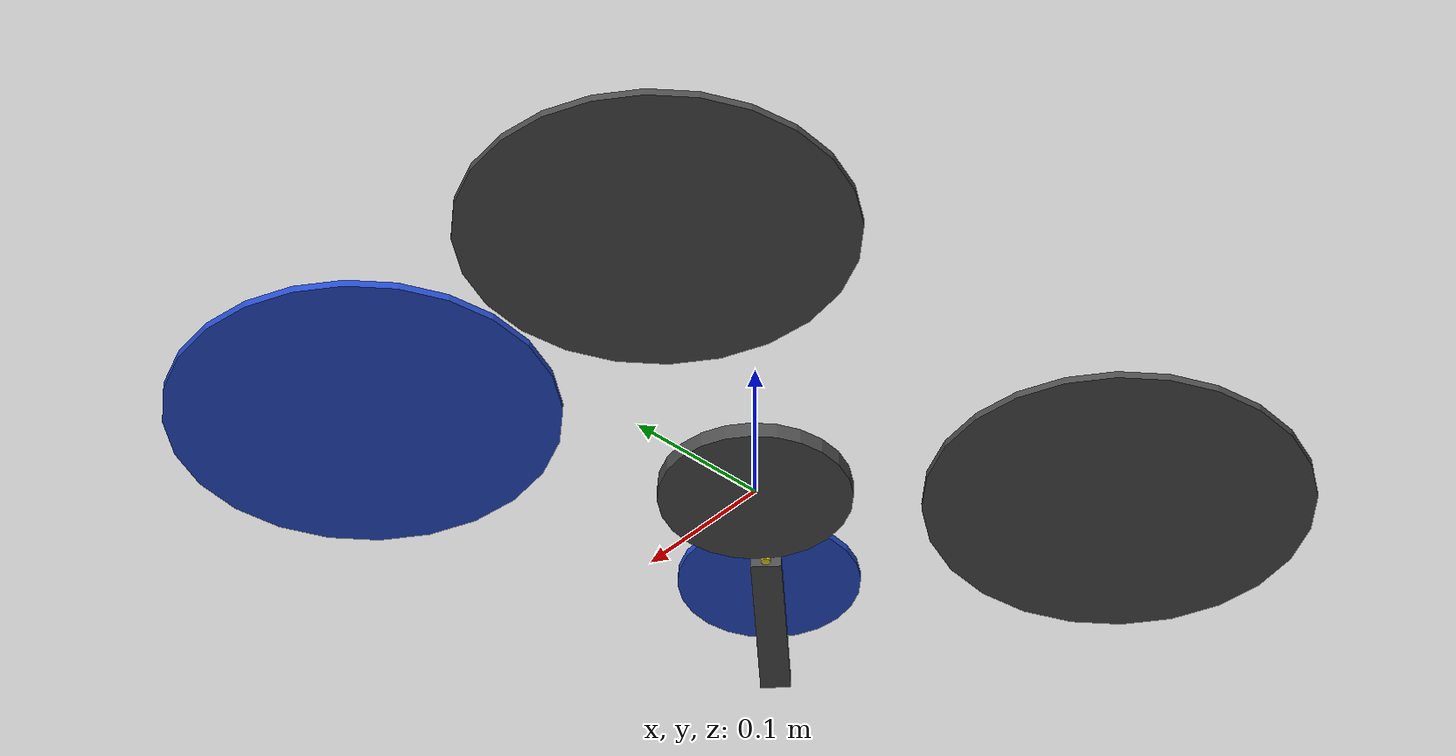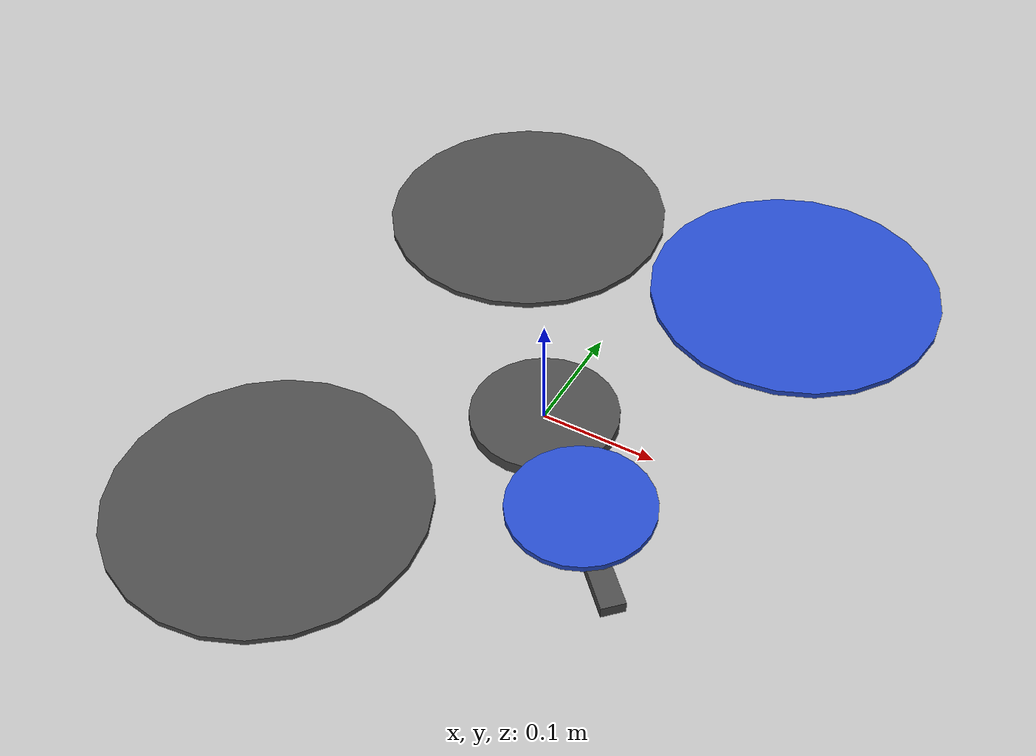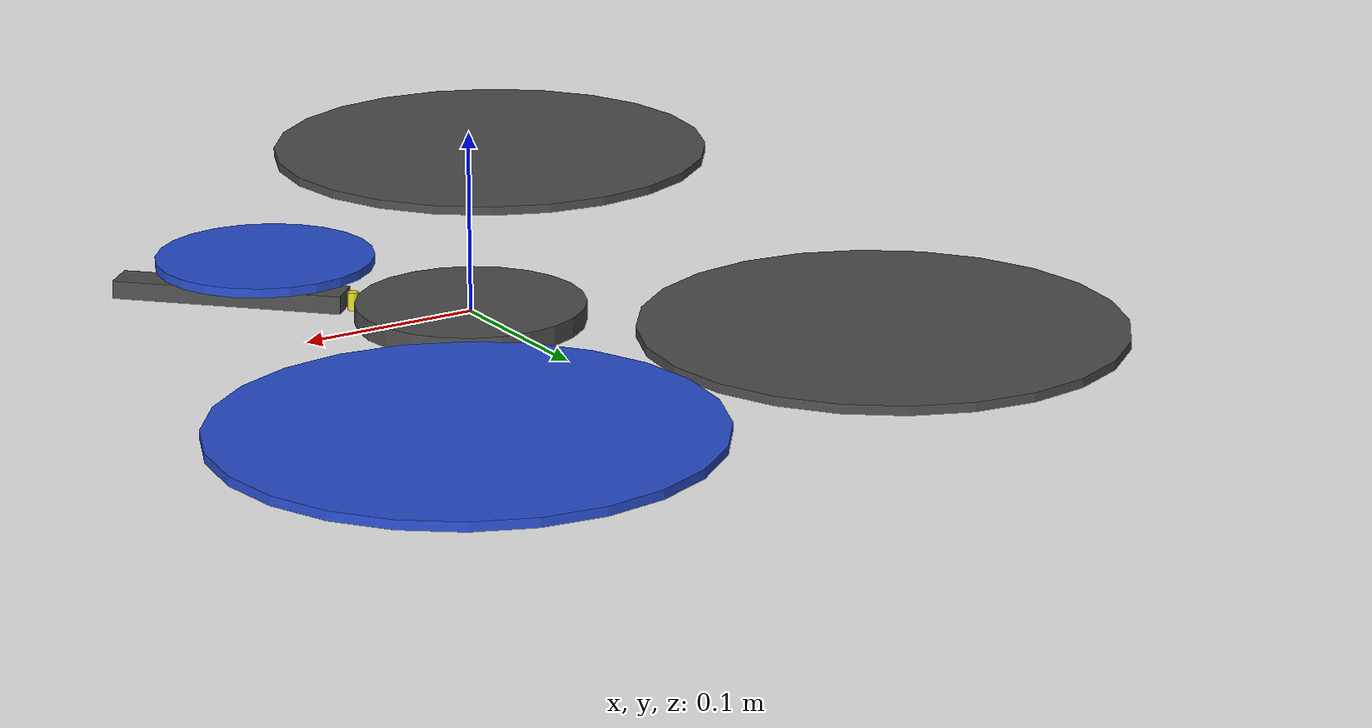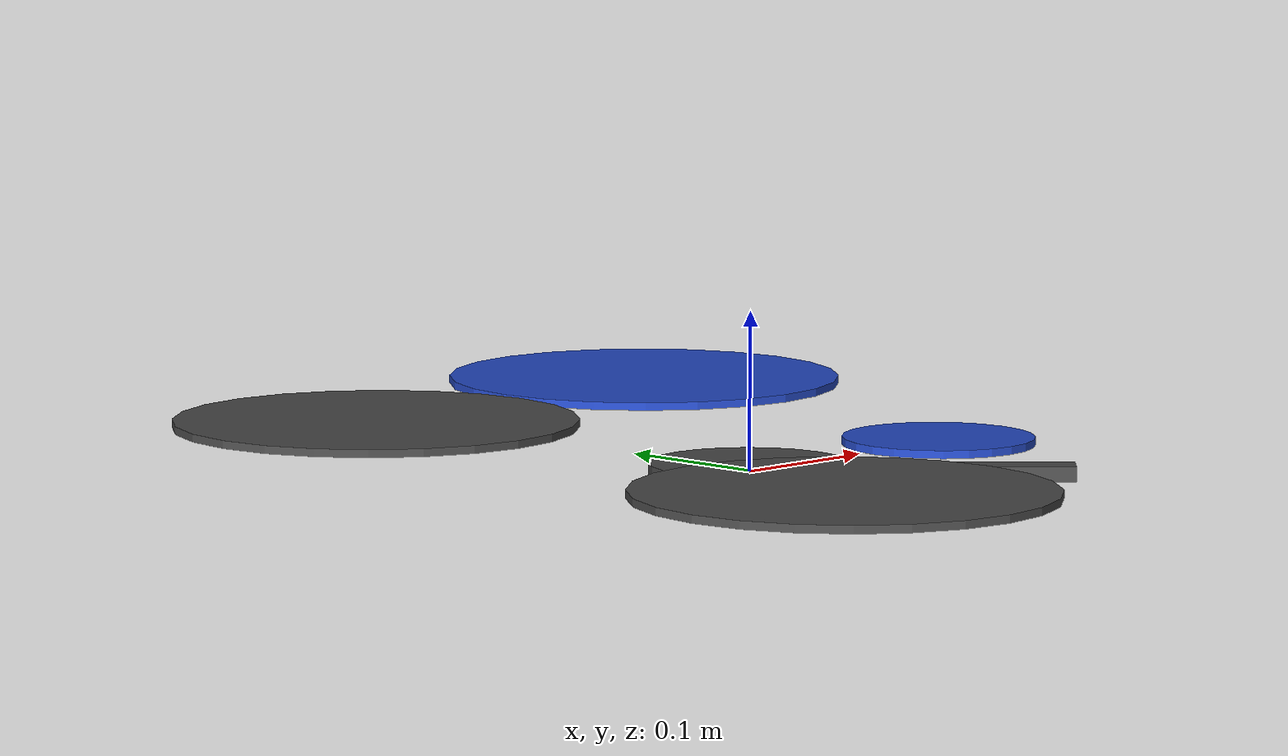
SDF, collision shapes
<!-- Generated from iris.sdf.jinja for use with HITL -->
<sdf version='1.6'>
  <model name='iris'>
    <link name='base_link'>
      <pose>0 0 0 0 0 0</pose>
      <inertial>
        <pose>0 0 0 0 0 0</pose>
        <mass>1.5</mass>
        <inertia>
          <ixx>0.029125</ixx>
          <ixy>0</ixy>
          <ixz>0</ixz>
          <iyy>0.029125</iyy>
          <iyz>0</iyz>
          <izz>0.055225</izz>
        </inertia>
      </inertial>
      <collision name='base_link_inertia_collision'>
        <pose>0 0 0 0 0 0</pose>
        <geometry>
          <cylinder>
            <length>0.011</length>
            <radius>0.063</radius>
          </cylinder>
        </geometry>
        <surface>
          <contact>
            <ode>
              <min_depth>0.001</min_depth>
              <max_vel>0</max_vel>
            </ode>
          </contact>
          <friction>
            <ode/>
          </friction>
        </surface>
      </collision>
      <visual name='base_link_inertia_visual'>
        <pose>0 0 0 0 0 0</pose>
        <geometry>
          <mesh>
            <scale>1 1 1</scale>
               <uri>model://wabble_hitl/meshes/main.dae</uri>
          </mesh>
        </geometry>
        <material>
          <script>
            <name>Gazebo/DarkGrey</name>
            <uri>file://media/materials/scripts/gazebo.material</uri>
          </script>
        </material>
      </visual>
      <gravity>1</gravity>
      <velocity_decay/>
    </link>

    <link name='/imu_link'>
      <pose>0 0 0 0 0 0</pose>
      <inertial>
        <pose>0 0 0 0 0 0</pose>
        <mass>0.015</mass>
        <inertia>
          <ixx>1e-05</ixx>
          <ixy>0</ixy>
          <ixz>0</ixz>
          <iyy>1e-05</iyy>
          <iyz>0</iyz>
          <izz>1e-05</izz>
        </inertia>
      </inertial>
    </link>
    <joint name='/imu_joint' type='revolute'>
      <child>/imu_link</child>
      <parent>base_link</parent>
      <axis>
        <xyz>1 0 0</xyz>
        <limit>
          <lower>0</lower>
          <upper>0</upper>
          <effort>0</effort>
          <velocity>0</velocity>
        </limit>
        <dynamics>
          <spring_reference>0</spring_reference>
          <spring_stiffness>0</spring_stiffness>
        </dynamics>
        <use_parent_model_frame>1</use_parent_model_frame>
      </axis>
    </joint>

    <!-- =========================== rubber_0 ============ -->
   <link name='rubber_0'>
      <pose relative_to="base_link">0.045 -0.05 0 0 0 0</pose>
      <inertial>
        <pose>0 0 0 0 0 0</pose>
        <mass>0.00001</mass>
        <inertia>
          <ixx>9.75e-07</ixx>
          <ixy>0</ixy>
          <ixz>0</ixz>
          <iyy>0.000273104</iyy>
          <iyz>0</iyz>
          <izz>0.000274004</izz>
        </inertia>
      </inertial>
      <collision name='rubber_0_collision'>
        <pose>0 0 0 0 0 0</pose>
        <geometry>
          <cylinder>
            <length>0.01</length>
            <radius>0.003</radius>
          </cylinder>
        </geometry>
        <surface>
          <contact>
            <ode/>
          </contact>
          <friction>
            <ode/>
          </friction>
        </surface>
      </collision>
      <visual name='rubber_0_visual'>
        <pose>0 0 0 0 0 0</pose>
        <geometry>
         <cylinder>
            <length>0.01</length>
            <radius>0.003</radius>
          </cylinder>
        </geometry>
        <material>
          <script>
            <name>Gazebo/Yellow</name>
            <uri>file://media/materials/scripts/gazebo.material</uri>
          </script>
        </material>
      </visual>
      <gravity>1</gravity>
      <velocity_decay/>
    </link>
    <joint name='rubber_0_joint' type='revolute'>
      <child>rubber_0</child>
      <parent>base_link</parent>
      <axis>
        <xyz>0 0 1</xyz>
        <limit>
          <lower>-1e+16</lower>
          <upper>1e+16</upper>
        </limit>
        <dynamics>
          <spring_reference>0.5</spring_reference>
          <spring_stiffness>0.5</spring_stiffness>
        </dynamics>
        <use_parent_model_frame>1</use_parent_model_frame>
      </axis>
    </joint>
    <!-- joint torsional spring plugin -->
    <plugin name="front_right_torsional_spring" filename="libgazebo_joint_torsional_spring.so">
      <kx>0.5</kx>
      <set_point>0.0</set_point>
      <joint>rubber_0_joint</joint>
    </plugin>

     <!-- =========================== arm_0 ============ -->
    <link name='arm_0'>
      <pose relative_to="rubber_0">0.035 -0.035 0 0 0 -2.36</pose>
      <inertial>
        <pose>0 0 0 0 0 0</pose>
        <mass>1.5</mass>
        <inertia>
          <ixx>0.029125</ixx>
          <ixy>0</ixy>
          <ixz>0</ixz>
          <iyy>0.029125</iyy>
          <iyz>0</iyz>
          <izz>0.055225</izz>
        </inertia>
      </inertial>
      <collision name='arm_0_inertia_collision'>
        <pose>0 0.02 0 0 0 0</pose>
        <geometry>
          <box>
            <size>0.02 0.13 0.01</size>
          </box>
        </geometry>
        <surface>
          <contact>
            <ode>
              <min_depth>0.001</min_depth>
              <max_vel>0</max_vel>
            </ode>
          </contact>
          <friction>
            <ode/>
          </friction>
        </surface>
      </collision>
      <visual name='arm_0_inertia_visual'>
        <pose>0 0 0 0 0 0</pose>
        <geometry>
          <mesh>
            <scale>1 1 1</scale>
            <uri>model://wabble_hitl/meshes/arm.dae</uri>
          </mesh>
        </geometry>
        <material>
          <script>
            <name>Gazebo/DarkGrey</name>
            <uri>file://media/materials/scripts/gazebo.material</uri>
          </script>
        </material>
      </visual>
      <gravity>1</gravity>
      <velocity_decay/>
    </link>
    <joint name='arm_0_joint' type='fixed'>
      <child>arm_0</child>
      <parent>rubber_0</parent>
    </joint>

     <!-- =========================== rotor_0 ============ -->
    <link name='rotor_0'>
      <pose relative_to="arm_0">0 0 0.02 0 0 0</pose>
      <inertial>
        <pose>0 0 0 0 0 0</pose>
        <mass>0.005</mass>
        <inertia>
          <ixx>9.75e-07</ixx>
          <ixy>0</ixy>
          <ixz>0</ixz>
          <iyy>0.000273104</iyy>
          <iyz>0</iyz>
          <izz>0.000274004</izz>
        </inertia>
      </inertial>
      <collision name='rotor_0_collision'>
        <pose>0 0 0 0 0 0</pose>
        <geometry>
          <cylinder>
            <length>0.005</length>
            <radius>0.06</radius>
          </cylinder>
        </geometry>
        <surface>
          <contact>
            <ode/>
          </contact>
          <friction>
            <ode/>
          </friction>
        </surface>
      </collision>
      <visual name='rotor_0_visual'>
        <pose>0 0 0 0 0 0</pose>
        <geometry>
          <mesh>
            <scale>1 1 1</scale>
            <uri>model://wabble_hitl/meshes/wabble_prop_ccw.dae</uri>
          </mesh>
        </geometry>
        <material>
          <script>
            <name>Gazebo/Blue</name>
            <uri>file://media/materials/scripts/gazebo.material</uri>
          </script>
        </material>
      </visual>
      <gravity>1</gravity>
      <velocity_decay/>
    </link>
    <joint name='rotor_0_joint' type='revolute'>
      <child>rotor_0</child>
      <parent>arm_0</parent>
      <axis>
        <xyz>0 0 1</xyz>
        <limit>
          <lower>-1e+16</lower>
          <upper>1e+16</upper>
        </limit>
        <dynamics>
          <spring_reference>0</spring_reference>
          <spring_stiffness>0</spring_stiffness>
        </dynamics>
        <use_parent_model_frame>1</use_parent_model_frame>
      </axis>
    </joint>

    <link name='rotor_1'>
      <pose>-0.13 0.2 0.023 0 0 0</pose>
      <inertial>
        <pose>0 0 0 0 0 0</pose>
        <mass>0.005</mass>
        <inertia>
          <ixx>9.75e-07</ixx>
          <ixy>0</ixy>
          <ixz>0</ixz>
          <iyy>0.000273104</iyy>
          <iyz>0</iyz>
          <izz>0.000274004</izz>
        </inertia>
      </inertial>
      <collision name='rotor_1_collision'>
        <pose>0 0 0 0 0 0</pose>
        <geometry>
          <cylinder>
            <length>0.005</length>
            <radius>0.128</radius>
          </cylinder>
        </geometry>
        <surface>
          <contact>
            <ode/>
          </contact>
          <friction>
            <ode/>
          </friction>
        </surface>
      </collision>
      <visual name='rotor_1_visual'>
        <pose>0 0 0 0 0 0</pose>
        <geometry>
          <mesh>
            <scale>1 1 1</scale>
            <uri>model://iris/meshes/iris_prop_ccw.dae</uri>
          </mesh>
        </geometry>
        <material>
          <script>
            <name>Gazebo/DarkGrey</name>
            <uri>file://media/materials/scripts/gazebo.material</uri>
          </script>
        </material>
      </visual>
      <gravity>1</gravity>
      <velocity_decay/>
    </link>
    <joint name='rotor_1_joint' type='revolute'>
      <child>rotor_1</child>
      <parent>base_link</parent>
      <axis>
        <xyz>0 0 1</xyz>
        <limit>
          <lower>-1e+16</lower>
          <upper>1e+16</upper>
        </limit>
        <dynamics>
          <spring_reference>0</spring_reference>
          <spring_stiffness>0</spring_stiffness>
        </dynamics>
        <use_parent_model_frame>1</use_parent_model_frame>
      </axis>
    </joint>
    <link name='rotor_2'>
      <pose>0.13 0.22 0.023 0 0 0</pose>
      <inertial>
        <pose>0 0 0 0 0 0</pose>
        <mass>0.005</mass>
        <inertia>
          <ixx>9.75e-07</ixx>
          <ixy>0</ixy>
          <ixz>0</ixz>
          <iyy>0.000273104</iyy>
          <iyz>0</iyz>
          <izz>0.000274004</izz>
        </inertia>
      </inertial>
      <collision name='rotor_2_collision'>
        <pose>0 0 0 0 0 0</pose>
        <geometry>
          <cylinder>
            <length>0.005</length>
            <radius>0.128</radius>
          </cylinder>
        </geometry>
        <surface>
          <contact>
            <ode/>
          </contact>
          <friction>
            <ode/>
          </friction>
        </surface>
      </collision>
      <visual name='rotor_2_visual'>
        <pose>0 0 0 0 0 0</pose>
        <geometry>
          <mesh>
            <scale>1 1 1</scale>
            <uri>model://iris/meshes/iris_prop_cw.dae</uri>
          </mesh>
        </geometry>
        <material>
          <script>
            <name>Gazebo/Blue</name>
            <uri>file://media/materials/scripts/gazebo.material</uri>
          </script>
        </material>
      </visual>
      <gravity>1</gravity>
      <velocity_decay/>
    </link>
    <joint name='rotor_2_joint' type='revolute'>
      <child>rotor_2</child>
      <parent>base_link</parent>
      <axis>
        <xyz>0 0 1</xyz>
        <limit>
          <lower>-1e+16</lower>
          <upper>1e+16</upper>
        </limit>
        <dynamics>
          <spring_reference>0</spring_reference>
          <spring_stiffness>0</spring_stiffness>
        </dynamics>
        <use_parent_model_frame>1</use_parent_model_frame>
      </axis>
    </joint>
    <link name='rotor_3'>
      <pose>-0.13 -0.2 0.023 0 0 0</pose>
      <inertial>
        <pose>0 0 0 0 0 0</pose>
        <mass>0.005</mass>
        <inertia>
          <ixx>9.75e-07</ixx>
          <ixy>0</ixy>
          <ixz>0</ixz>
          <iyy>0.000273104</iyy>
          <iyz>0</iyz>
          <izz>0.000274004</izz>
        </inertia>
      </inertial>
      <collision name='rotor_3_collision'>
        <pose>0 0 0 0 0 0</pose>
        <geometry>
          <cylinder>
            <length>0.005</length>
            <radius>0.128</radius>
          </cylinder>
        </geometry>
        <surface>
          <contact>
            <ode/>
          </contact>
          <friction>
            <ode/>
          </friction>
        </surface>
      </collision>
      <visual name='rotor_3_visual'>
        <pose>0 0 0 0 0 0</pose>
        <geometry>
          <mesh>
            <scale>1 1 1</scale>
            <uri>model://iris/meshes/iris_prop_cw.dae</uri>
          </mesh>
        </geometry>
        <material>
          <script>
            <name>Gazebo/DarkGrey</name>
            <uri>file://media/materials/scripts/gazebo.material</uri>
          </script>
        </material>
      </visual>
      <gravity>1</gravity>
      <velocity_decay/>
    </link>
    <joint name='rotor_3_joint' type='revolute'>
      <child>rotor_3</child>
      <parent>base_link</parent>
      <axis>
        <xyz>0 0 1</xyz>
        <limit>
          <lower>-1e+16</lower>
          <upper>1e+16</upper>
        </limit>
        <dynamics>
          <spring_reference>0</spring_reference>
          <spring_stiffness>0</spring_stiffness>
        </dynamics>
        <use_parent_model_frame>1</use_parent_model_frame>
      </axis>
    </joint>
    <plugin name='rosbag' filename='libgazebo_multirotor_base_plugin.so'>
      <robotNamespace/>
      <linkName>base_link</linkName>
      <rotorVelocitySlowdownSim>10</rotorVelocitySlowdownSim>
    </plugin>
    <plugin name='front_right_motor_model' filename='libgazebo_motor_model.so'>
      <robotNamespace/>
      <jointName>rotor_0_joint</jointName>
      <linkName>rotor_0</linkName>
      <turningDirection>ccw</turningDirection>
      <timeConstantUp>0.0125</timeConstantUp>
      <timeConstantDown>0.025</timeConstantDown>
      <maxRotVelocity>1100</maxRotVelocity>
      <motorConstant>5.84e-06</motorConstant>
      <momentConstant>0.06</momentConstant>
      <commandSubTopic>/gazebo/command/motor_speed</commandSubTopic>
      <motorNumber>0</motorNumber>
      <rotorDragCoefficient>0.000175</rotorDragCoefficient>
      <rollingMomentCoefficient>1e-06</rollingMomentCoefficient>
      <motorSpeedPubTopic>/motor_speed/0</motorSpeedPubTopic>
      <rotorVelocitySlowdownSim>10</rotorVelocitySlowdownSim>
    </plugin>
    <plugin name='back_left_motor_model' filename='libgazebo_motor_model.so'>
      <robotNamespace/>
      <jointName>rotor_1_joint</jointName>
      <linkName>rotor_1</linkName>
      <turningDirection>ccw</turningDirection>
      <timeConstantUp>0.0125</timeConstantUp>
      <timeConstantDown>0.025</timeConstantDown>
      <maxRotVelocity>1100</maxRotVelocity>
      <motorConstant>5.84e-06</motorConstant>
      <momentConstant>0.06</momentConstant>
      <commandSubTopic>/gazebo/command/motor_speed</commandSubTopic>
      <motorNumber>1</motorNumber>
      <rotorDragCoefficient>0.000175</rotorDragCoefficient>
      <rollingMomentCoefficient>1e-06</rollingMomentCoefficient>
      <motorSpeedPubTopic>/motor_speed/1</motorSpeedPubTopic>
      <rotorVelocitySlowdownSim>10</rotorVelocitySlowdownSim>
    </plugin>
    <plugin name='front_left_motor_model' filename='libgazebo_motor_model.so'>
      <robotNamespace/>
      <jointName>rotor_2_joint</jointName>
      <linkName>rotor_2</linkName>
      <turningDirection>cw</turningDirection>
      <timeConstantUp>0.0125</timeConstantUp>
      <timeConstantDown>0.025</timeConstantDown>
      <maxRotVelocity>1100</maxRotVelocity>
      <motorConstant>5.84e-06</motorConstant>
      <momentConstant>0.06</momentConstant>
      <commandSubTopic>/gazebo/command/motor_speed</commandSubTopic>
      <motorNumber>2</motorNumber>
      <rotorDragCoefficient>0.000175</rotorDragCoefficient>
      <rollingMomentCoefficient>1e-06</rollingMomentCoefficient>
      <motorSpeedPubTopic>/motor_speed/2</motorSpeedPubTopic>
      <rotorVelocitySlowdownSim>10</rotorVelocitySlowdownSim>
    </plugin>
    <plugin name='back_right_motor_model' filename='libgazebo_motor_model.so'>
      <robotNamespace/>
      <jointName>rotor_3_joint</jointName>
      <linkName>rotor_3</linkName>
      <turningDirection>cw</turningDirection>
      <timeConstantUp>0.0125</timeConstantUp>
      <timeConstantDown>0.025</timeConstantDown>
      <maxRotVelocity>1100</maxRotVelocity>
      <motorConstant>5.84e-06</motorConstant>
      <momentConstant>0.06</momentConstant>
      <commandSubTopic>/gazebo/command/motor_speed</commandSubTopic>
      <motorNumber>3</motorNumber>
      <rotorDragCoefficient>0.000175</rotorDragCoefficient>
      <rollingMomentCoefficient>1e-06</rollingMomentCoefficient>
      <motorSpeedPubTopic>/motor_speed/3</motorSpeedPubTopic>
      <rotorVelocitySlowdownSim>10</rotorVelocitySlowdownSim>
    </plugin>
    <plugin name="vision_plugin" filename="libgazebo_vision_plugin.so">
        <robotNamespace></robotNamespace>
        <pubRate>30</pubRate>
        <randomWalk>0.1</randomWalk>
        <noiseDensity>0.01</noiseDensity>
        <corellationTime>60.0</corellationTime>
    </plugin>
    <plugin name='groundtruth_plugin' filename='libgazebo_groundtruth_plugin.so'>
      <robotNamespace/>
    </plugin>
    <plugin name='magnetometer_plugin' filename='libgazebo_magnetometer_plugin.so'>
      <robotNamespace/>
      <pubRate>100</pubRate>
      <noiseDensity>0.0004</noiseDensity>
      <randomWalk>6.4e-06</randomWalk>
      <biasCorrelationTime>600</biasCorrelationTime>
      <magTopic>/mag</magTopic>
    </plugin>
    <plugin name='barometer_plugin' filename='libgazebo_barometer_plugin.so'>
      <robotNamespace/>
      <pubRate>50</pubRate>
      <baroTopic>/baro</baroTopic>
      <baroDriftPaPerSec>0</baroDriftPaPerSec>
    </plugin>
    <plugin name='mavlink_interface' filename='libgazebo_mavlink_interface.so'>
      <robotNamespace/>
      <imuSubTopic>/imu</imuSubTopic>
      <magSubTopic>/mag</magSubTopic>
      <baroSubTopic>/baro</baroSubTopic>
      <mavlink_addr>INADDR_ANY</mavlink_addr>
      <mavlink_tcp_port>4560</mavlink_tcp_port>
      <mavlink_udp_port>14560</mavlink_udp_port>
      <serialEnabled>1</serialEnabled>              <!-- =========== ENABLE/DISABLE HITL =========== -->
      <serialDevice>/dev/ttyUSB0</serialDevice>
      <hil_mode>1</hil_mode>
      <hil_state_level>0</hil_state_level>
      <baudRate>921600</baudRate>
      <qgc_addr>INADDR_ANY</qgc_addr>
      <qgc_udp_port>14550</qgc_udp_port>
      <sdk_addr>INADDR_ANY</sdk_addr>
      <sdk_udp_port>14540</sdk_udp_port>
      <send_vision_estimation>0</send_vision_estimation>
      <send_odometry>1</send_odometry>
      <enable_lockstep>0</enable_lockstep>
      <use_tcp>0</use_tcp>
      <motorSpeedCommandPubTopic>/gazebo/command/motor_speed</motorSpeedCommandPubTopic>
      <control_channels>
        <channel name='rotor1'>
          <input_index>0</input_index>
          <input_offset>0</input_offset>
          <input_scaling>1000</input_scaling>
          <zero_position_disarmed>0</zero_position_disarmed>
          <zero_position_armed>100</zero_position_armed>
          <joint_control_type>velocity</joint_control_type>
        </channel>
        <channel name='rotor2'>
          <input_index>1</input_index>
          <input_offset>0</input_offset>
          <input_scaling>1000</input_scaling>
          <zero_position_disarmed>0</zero_position_disarmed>
          <zero_position_armed>100</zero_position_armed>
          <joint_control_type>velocity</joint_control_type>
        </channel>
        <channel name='rotor3'>
          <input_index>2</input_index>
          <input_offset>0</input_offset>
          <input_scaling>1000</input_scaling>
          <zero_position_disarmed>0</zero_position_disarmed>
          <zero_position_armed>100</zero_position_armed>
          <joint_control_type>velocity</joint_control_type>
        </channel>
        <channel name='rotor4'>
          <input_index>3</input_index>
          <input_offset>0</input_offset>
          <input_scaling>1000</input_scaling>
          <zero_position_disarmed>0</zero_position_disarmed>
          <zero_position_armed>100</zero_position_armed>
          <joint_control_type>velocity</joint_control_type>
        </channel>
        <channel name='rotor5'>
          <input_index>4</input_index>
          <input_offset>1</input_offset>
          <input_scaling>324.6</input_scaling>
          <zero_position_disarmed>0</zero_position_disarmed>
          <zero_position_armed>0</zero_position_armed>
          <joint_control_type>velocity</joint_control_type>
          <joint_control_pid>
            <p>0.1</p>
            <i>0</i>
            <d>0</d>
            <iMax>0.0</iMax>
            <iMin>0.0</iMin>
            <cmdMax>2</cmdMax>
            <cmdMin>-2</cmdMin>
          </joint_control_pid>
          <joint_name>zephyr_delta_wing::propeller_joint</joint_name>
        </channel>
        <channel name='rotor6'>
          <input_index>5</input_index>
          <input_offset>0</input_offset>
          <input_scaling>0.524</input_scaling>
          <zero_position_disarmed>0</zero_position_disarmed>
          <zero_position_armed>0</zero_position_armed>
          <joint_control_type>position</joint_control_type>
          <joint_name>zephyr_delta_wing::flap_left_joint</joint_name>
          <joint_control_pid>
            <p>10.0</p>
            <i>0</i>
            <d>0</d>
            <iMax>0</iMax>
            <iMin>0</iMin>
            <cmdMax>20</cmdMax>
            <cmdMin>-20</cmdMin>
          </joint_control_pid>
        </channel>
        <channel name='rotor7'>
          <input_index>6</input_index>
          <input_offset>0</input_offset>
          <input_scaling>0.524</input_scaling>
          <zero_position_disarmed>0</zero_position_disarmed>
          <zero_position_armed>0</zero_position_armed>
          <joint_control_type>position</joint_control_type>
          <joint_name>zephyr_delta_wing::flap_right_joint</joint_name>
          <joint_control_pid>
            <p>10.0</p>
            <i>0</i>
            <d>0</d>
            <iMax>0</iMax>
            <iMin>0</iMin>
            <cmdMax>20</cmdMax>
            <cmdMin>-20</cmdMin>
          </joint_control_pid>
        </channel>
        <channel name='rotor8'>
          <input_index>7</input_index>
          <input_offset>0</input_offset>
          <input_scaling>0.524</input_scaling>
          <zero_position_disarmed>0</zero_position_disarmed>
          <zero_position_armed>0</zero_position_armed>
          <joint_control_type>position</joint_control_type>
        </channel>
      </control_channels>
    </plugin>
    <static>0</static>
    <plugin name='rotors_gazebo_imu_plugin' filename='libgazebo_imu_plugin.so'>
      <robotNamespace/>
      <linkName>/imu_link</linkName>
      <imuTopic>/imu</imuTopic>
      <gyroscopeNoiseDensity>0.00018665</gyroscopeNoiseDensity>
      <gyroscopeRandomWalk>3.8785e-05</gyroscopeRandomWalk>
      <gyroscopeBiasCorrelationTime>1000.0</gyroscopeBiasCorrelationTime>
      <gyroscopeTurnOnBiasSigma>0.0087</gyroscopeTurnOnBiasSigma>
      <accelerometerNoiseDensity>0.00186</accelerometerNoiseDensity>
      <accelerometerRandomWalk>0.006</accelerometerRandomWalk>
      <accelerometerBiasCorrelationTime>300.0</accelerometerBiasCorrelationTime>
      <accelerometerTurnOnBiasSigma>0.196</accelerometerTurnOnBiasSigma>
    </plugin>
  </model>
</sdf>
